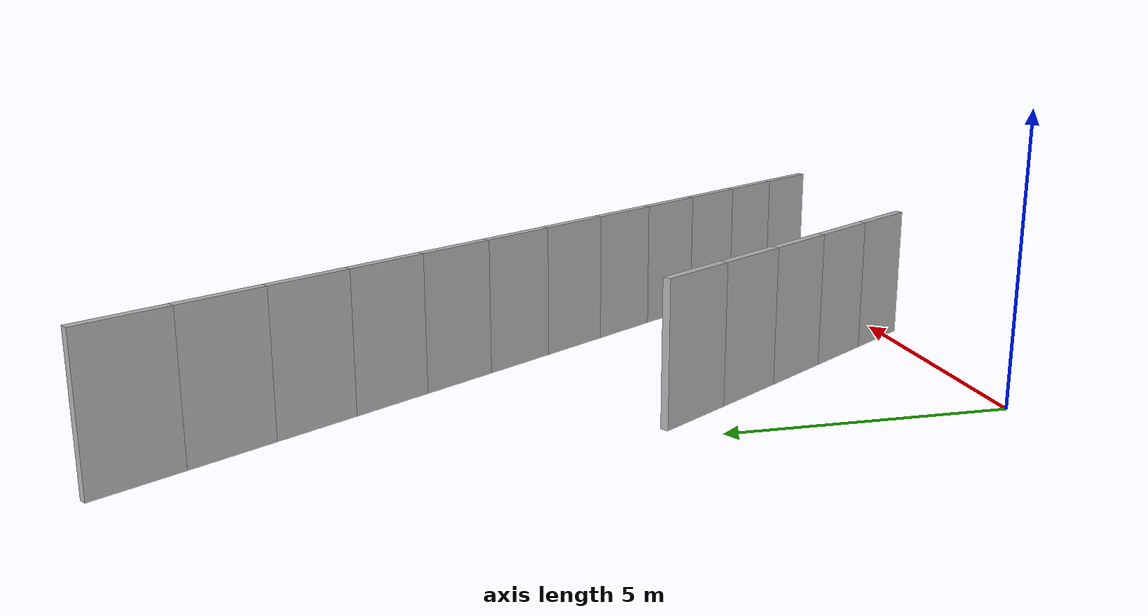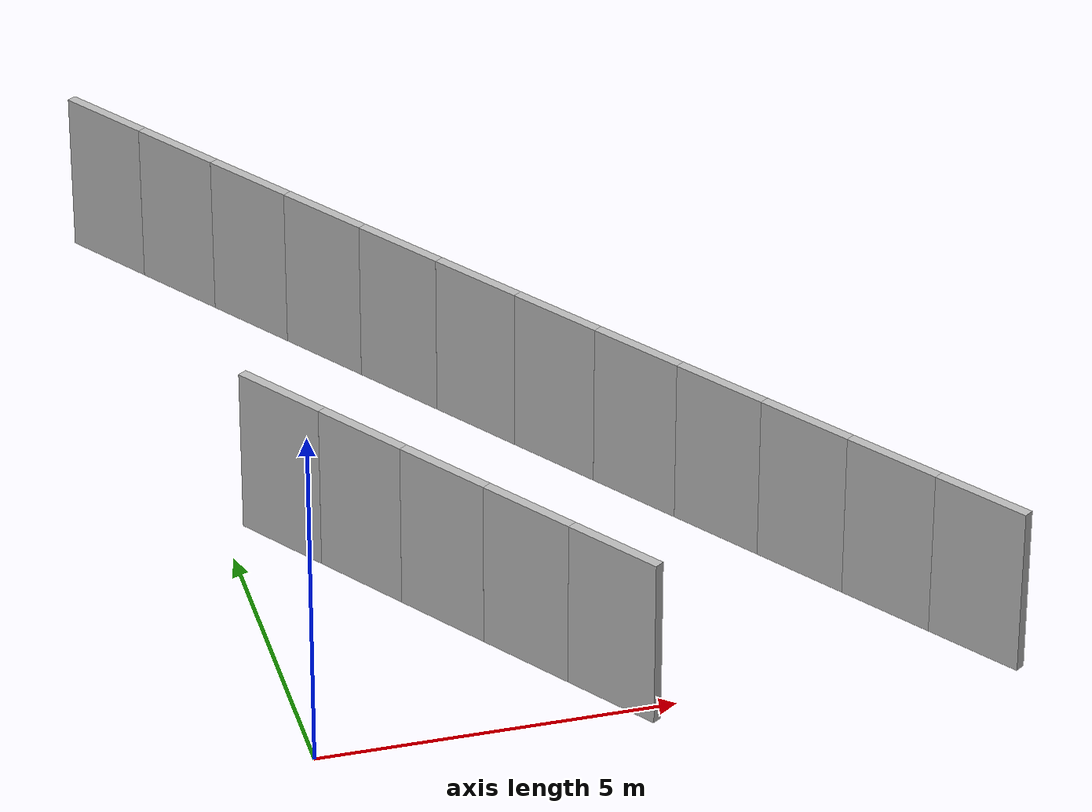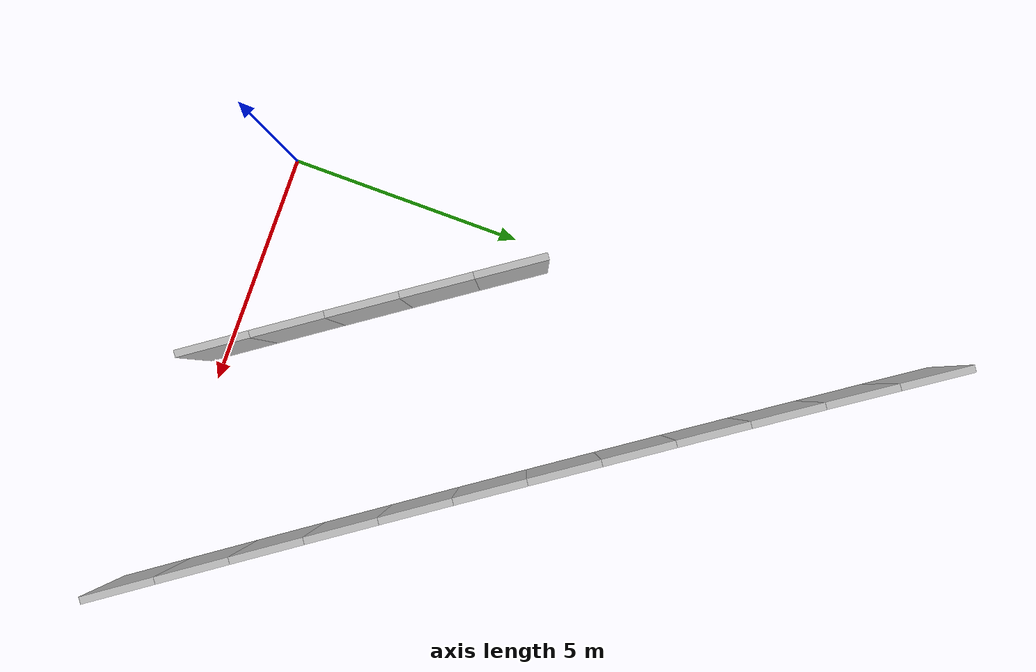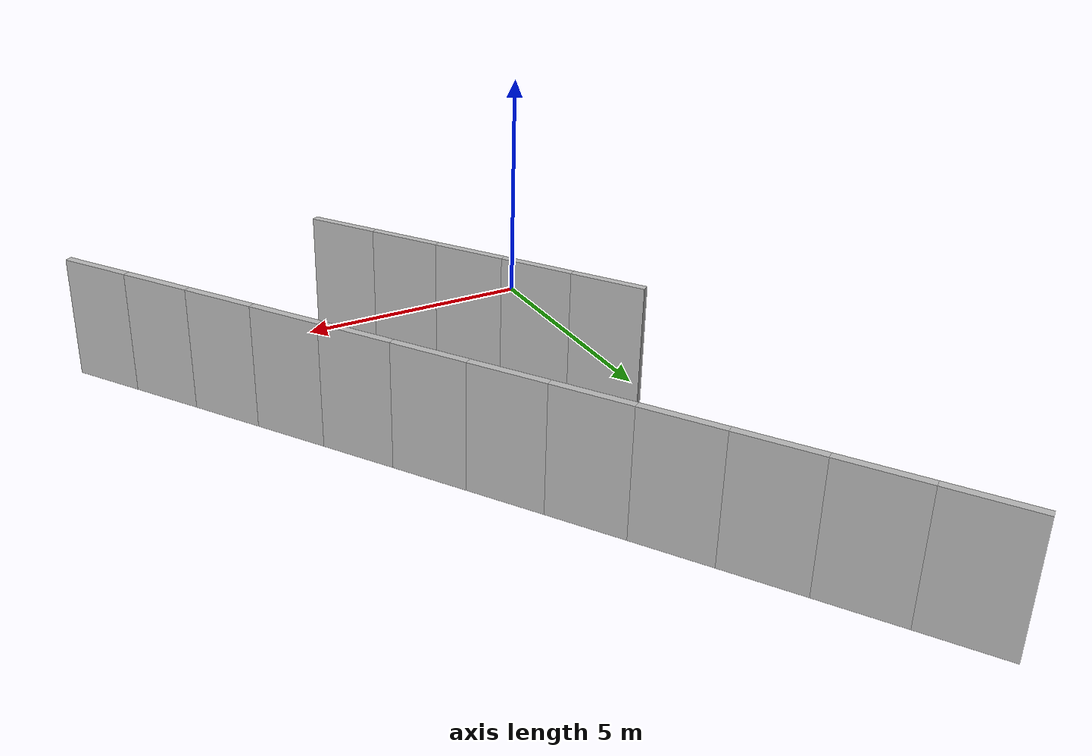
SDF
<?xml version="1.0" ?>
<sdf version="1.6">
  <model name="sps_0712">
    <pose frame="">0 0 0 0 -0 0</pose>
    <static>1</static>
    <self_collide>0</self_collide>
    <allow_auto_disable>0</allow_auto_disable>
    <link name="Wall8396">
      <kinematic>0</kinematic>
      <gravity>1</gravity>
      <self_collide>0</self_collide>
      <collision name="collision">
        <geometry>
          <box>
            <size>1.49897 0.15 2.5</size>
          </box>
        </geometry>
        <pose frame="">0 0 0 0 -0 0</pose>
      </collision>
      <visual name="visual">
        <geometry>
          <box>
            <size>1.49897 0.15 2.5</size>
          </box>
        </geometry>
        <pose frame="">0 0 0 0 -0 0</pose>
        <cast_shadows>1</cast_shadows>
        <transparency>0.0</transparency>
      </visual>
      <pose frame="">0.796836 5.23619 1.25 0 0 -0.969174</pose>
    </link>
    <link name="Wall8397">
      <kinematic>0</kinematic>
      <gravity>1</gravity>
      <self_collide>0</self_collide>
      <collision name="collision">
        <geometry>
          <box>
            <size>1.49901 0.15 2.5</size>
          </box>
        </geometry>
        <pose frame="">0 0 0 0 -0 0</pose>
      </collision>
      <visual name="visual">
        <geometry>
          <box>
            <size>1.49901 0.15 2.5</size>
          </box>
        </geometry>
        <pose frame="">0 0 0 0 -0 0</pose>
        <cast_shadows>1</cast_shadows>
        <transparency>0.0</transparency>
      </visual>
      <pose frame="">1.64623 4.00108 1.25 0 0 -0.967559</pose>
    </link>
    <link name="Wall8398">
      <kinematic>0</kinematic>
      <gravity>1</gravity>
      <self_collide>0</self_collide>
      <collision name="collision">
        <geometry>
          <box>
            <size>1.49899 0.15 2.5</size>
          </box>
        </geometry>
        <pose frame="">0 0 0 0 -0 0</pose>
      </collision>
      <visual name="visual">
        <geometry>
          <box>
            <size>1.49899 0.15 2.5</size>
          </box>
        </geometry>
        <pose frame="">0 0 0 0 -0 0</pose>
        <cast_shadows>1</cast_shadows>
        <transparency>0.0</transparency>
      </visual>
      <pose frame="">2.49755 2.76729 1.25 0 0 -0.966068</pose>
    </link>
    <link name="Wall8399">
      <kinematic>0</kinematic>
      <gravity>1</gravity>
      <self_collide>0</self_collide>
      <collision name="collision">
        <geometry>
          <box>
            <size>1.49885 0.15 2.5</size>
          </box>
        </geometry>
        <pose frame="">0 0 0 0 -0 0</pose>
      </collision>
      <visual name="visual">
        <geometry>
          <box>
            <size>1.49885 0.15 2.5</size>
          </box>
        </geometry>
        <pose frame="">0 0 0 0 -0 0</pose>
        <cast_shadows>1</cast_shadows>
        <transparency>0.0</transparency>
      </visual>
      <pose frame="">3.35076 1.5349 1.25 0 0 -0.964417</pose>
    </link>
    <link name="Wall8400">
      <kinematic>0</kinematic>
      <gravity>1</gravity>
      <self_collide>0</self_collide>
      <collision name="collision">
        <geometry>
          <box>
            <size>1.49889 0.15 2.5</size>
          </box>
        </geometry>
        <pose frame="">0 0 0 0 -0 0</pose>
      </collision>
      <visual name="visual">
        <geometry>
          <box>
            <size>1.49889 0.15 2.5</size>
          </box>
        </geometry>
        <pose frame="">0 0 0 0 -0 0</pose>
        <cast_shadows>1</cast_shadows>
        <transparency>0.0</transparency>
      </visual>
      <pose frame="">4.20586 0.303878 1.25 0 0 -0.962949</pose>
    </link>
    <link name="Wall9472">
      <kinematic>0</kinematic>
      <gravity>1</gravity>
      <self_collide>0</self_collide>
      <collision name="collision">
        <geometry>
          <box>
            <size>1.49236 0.15 2.5</size>
          </box>
        </geometry>
        <pose frame="">0 0 0 0 -0 0</pose>
      </collision>
      <visual name="visual">
        <geometry>
          <box>
            <size>1.49236 0.15 2.5</size>
          </box>
        </geometry>
        <pose frame="">0 0 0 0 -0 0</pose>
        <cast_shadows>1</cast_shadows>
        <transparency>0.0</transparency>
      </visual>
      <pose frame="">0.0112527 13.7482 1.25 0 0 -0.977122</pose>
    </link>
    <link name="Wall9473">
      <kinematic>0</kinematic>
      <gravity>1</gravity>
      <self_collide>0</self_collide>
      <collision name="collision">
        <geometry>
          <box>
            <size>1.49249 0.15 2.5</size>
          </box>
        </geometry>
        <pose frame="">0 0 0 0 -0 0</pose>
      </collision>
      <visual name="visual">
        <geometry>
          <box>
            <size>1.49249 0.15 2.5</size>
          </box>
        </geometry>
        <pose frame="">0 0 0 0 -0 0</pose>
        <cast_shadows>1</cast_shadows>
        <transparency>0.0</transparency>
      </visual>
      <pose frame="">0.847068 12.5118 1.25 0 0 -0.975603</pose>
    </link>
    <link name="Wall9474">
      <kinematic>0</kinematic>
      <gravity>1</gravity>
      <self_collide>0</self_collide>
      <collision name="collision">
        <geometry>
          <box>
            <size>1.49241 0.15 2.5</size>
          </box>
        </geometry>
        <pose frame="">0 0 0 0 -0 0</pose>
      </collision>
      <visual name="visual">
        <geometry>
          <box>
            <size>1.49241 0.15 2.5</size>
          </box>
        </geometry>
        <pose frame="">0 0 0 0 -0 0</pose>
        <cast_shadows>1</cast_shadows>
        <transparency>0.0</transparency>
      </visual>
      <pose frame="">1.68487 11.2767 1.25 0 0 -0.973935</pose>
    </link>
    <link name="Wall9475">
      <kinematic>0</kinematic>
      <gravity>1</gravity>
      <self_collide>0</self_collide>
      <collision name="collision">
        <geometry>
          <box>
            <size>1.4924 0.15 2.5</size>
          </box>
        </geometry>
        <pose frame="">0 0 0 0 -0 0</pose>
      </collision>
      <visual name="visual">
        <geometry>
          <box>
            <size>1.4924 0.15 2.5</size>
          </box>
        </geometry>
        <pose frame="">0 0 0 0 -0 0</pose>
        <cast_shadows>1</cast_shadows>
        <transparency>0.0</transparency>
      </visual>
      <pose frame="">2.52465 10.043 1.25 0 0 -0.972347</pose>
    </link>
    <link name="Wall9476">
      <kinematic>0</kinematic>
      <gravity>1</gravity>
      <self_collide>0</self_collide>
      <collision name="collision">
        <geometry>
          <box>
            <size>1.49251 0.15 2.5</size>
          </box>
        </geometry>
        <pose frame="">0 0 0 0 -0 0</pose>
      </collision>
      <visual name="visual">
        <geometry>
          <box>
            <size>1.49251 0.15 2.5</size>
          </box>
        </geometry>
        <pose frame="">0 0 0 0 -0 0</pose>
        <cast_shadows>1</cast_shadows>
        <transparency>0.0</transparency>
      </visual>
      <pose frame="">3.36645 8.81059 1.25 0 0 -0.970714</pose>
    </link>
    <link name="Wall9477">
      <kinematic>0</kinematic>
      <gravity>1</gravity>
      <self_collide>0</self_collide>
      <collision name="collision">
        <geometry>
          <box>
            <size>1.4924 0.15 2.5</size>
          </box>
        </geometry>
        <pose frame="">0 0 0 0 -0 0</pose>
      </collision>
      <visual name="visual">
        <geometry>
          <box>
            <size>1.4924 0.15 2.5</size>
          </box>
        </geometry>
        <pose frame="">0 0 0 0 -0 0</pose>
        <cast_shadows>1</cast_shadows>
        <transparency>0.0</transparency>
      </visual>
      <pose frame="">4.21017 7.57951 1.25 0 0 -0.969227</pose>
    </link>
    <link name="Wall9478">
      <kinematic>0</kinematic>
      <gravity>1</gravity>
      <self_collide>0</self_collide>
      <collision name="collision">
        <geometry>
          <box>
            <size>1.49225 0.15 2.5</size>
          </box>
        </geometry>
        <pose frame="">0 0 0 0 -0 0</pose>
      </collision>
      <visual name="visual">
        <geometry>
          <box>
            <size>1.49225 0.15 2.5</size>
          </box>
        </geometry>
        <pose frame="">0 0 0 0 -0 0</pose>
        <cast_shadows>1</cast_shadows>
        <transparency>0.0</transparency>
      </visual>
      <pose frame="">5.05566 6.34981 1.25 0 0 -0.967717</pose>
    </link>
    <link name="Wall9479">
      <kinematic>0</kinematic>
      <gravity>1</gravity>
      <self_collide>0</self_collide>
      <collision name="collision">
        <geometry>
          <box>
            <size>1.49237 0.15 2.5</size>
          </box>
        </geometry>
        <pose frame="">0 0 0 0 -0 0</pose>
      </collision>
      <visual name="visual">
        <geometry>
          <box>
            <size>1.49237 0.15 2.5</size>
          </box>
        </geometry>
        <pose frame="">0 0 0 0 -0 0</pose>
        <cast_shadows>1</cast_shadows>
        <transparency>0.0</transparency>
      </visual>
      <pose frame="">5.90316 5.1215 1.25 0 0 -0.965937</pose>
    </link>
    <link name="Wall9480">
      <kinematic>0</kinematic>
      <gravity>1</gravity>
      <self_collide>0</self_collide>
      <collision name="collision">
        <geometry>
          <box>
            <size>1.49243 0.15 2.5</size>
          </box>
        </geometry>
        <pose frame="">0 0 0 0 -0 0</pose>
      </collision>
      <visual name="visual">
        <geometry>
          <box>
            <size>1.49243 0.15 2.5</size>
          </box>
        </geometry>
        <pose frame="">0 0 0 0 -0 0</pose>
        <cast_shadows>1</cast_shadows>
        <transparency>0.0</transparency>
      </visual>
      <pose frame="">6.75268 3.89448 1.25 0 0 -0.96452</pose>
    </link>
    <link name="Wall9481">
      <kinematic>0</kinematic>
      <gravity>1</gravity>
      <self_collide>0</self_collide>
      <collision name="collision">
        <geometry>
          <box>
            <size>1.49234 0.15 2.5</size>
          </box>
        </geometry>
        <pose frame="">0 0 0 0 -0 0</pose>
      </collision>
      <visual name="visual">
        <geometry>
          <box>
            <size>1.49234 0.15 2.5</size>
          </box>
        </geometry>
        <pose frame="">0 0 0 0 -0 0</pose>
        <cast_shadows>1</cast_shadows>
        <transparency>0.0</transparency>
      </visual>
      <pose frame="">7.60406 2.66878 1.25 0 0 -0.962885</pose>
    </link>
    <link name="Wall9482">
      <kinematic>0</kinematic>
      <gravity>1</gravity>
      <self_collide>0</self_collide>
      <collision name="collision">
        <geometry>
          <box>
            <size>1.49247 0.15 2.5</size>
          </box>
        </geometry>
        <pose frame="">0 0 0 0 -0 0</pose>
      </collision>
      <visual name="visual">
        <geometry>
          <box>
            <size>1.49247 0.15 2.5</size>
          </box>
        </geometry>
        <pose frame="">0 0 0 0 -0 0</pose>
        <cast_shadows>1</cast_shadows>
        <transparency>0.0</transparency>
      </visual>
      <pose frame="">8.45736 1.44438 1.25 0 0 -0.9614</pose>
    </link>
    <link name="Wall9483">
      <kinematic>0</kinematic>
      <gravity>1</gravity>
      <self_collide>0</self_collide>
      <collision name="collision">
        <geometry>
          <box>
            <size>1.49224 0.15 2.5</size>
          </box>
        </geometry>
        <pose frame="">0 0 0 0 -0 0</pose>
      </collision>
      <visual name="visual">
        <geometry>
          <box>
            <size>1.49224 0.15 2.5</size>
          </box>
        </geometry>
        <pose frame="">0 0 0 0 -0 0</pose>
        <cast_shadows>1</cast_shadows>
        <transparency>0.0</transparency>
      </visual>
      <pose frame="">9.31258 0.221389 1.25 0 0 -0.959695</pose>
    </link>
  </model>
</sdf>
